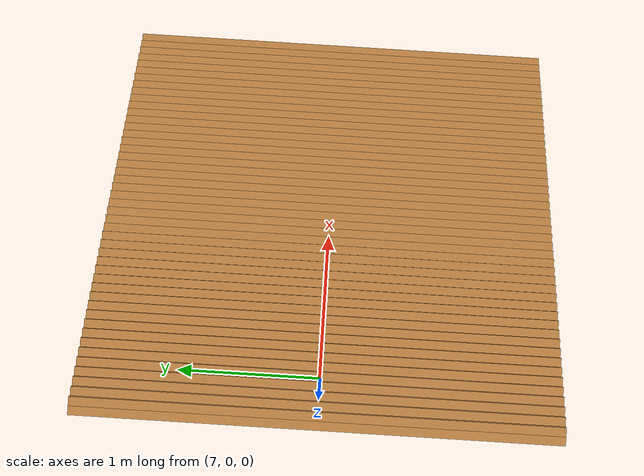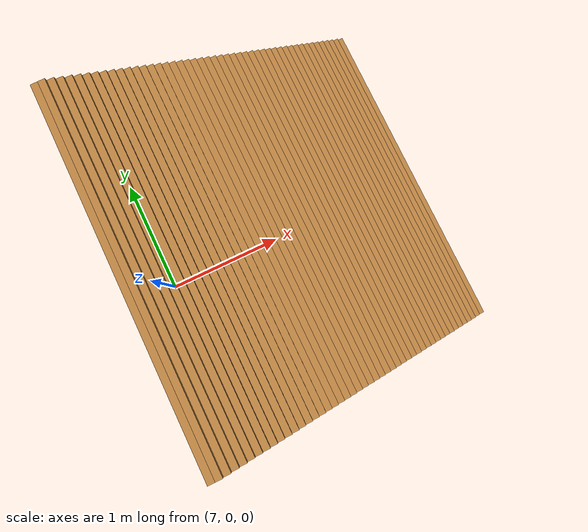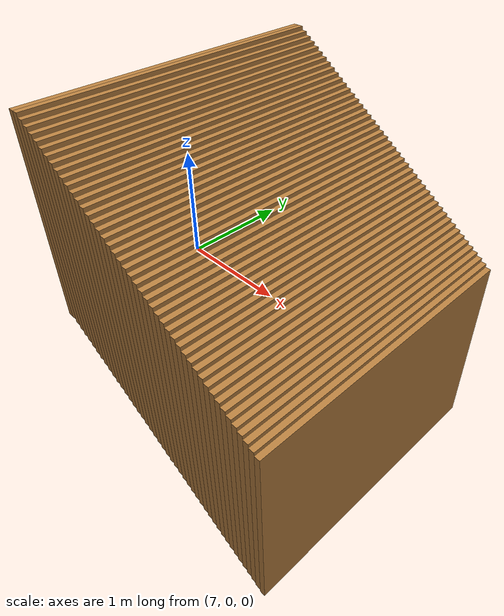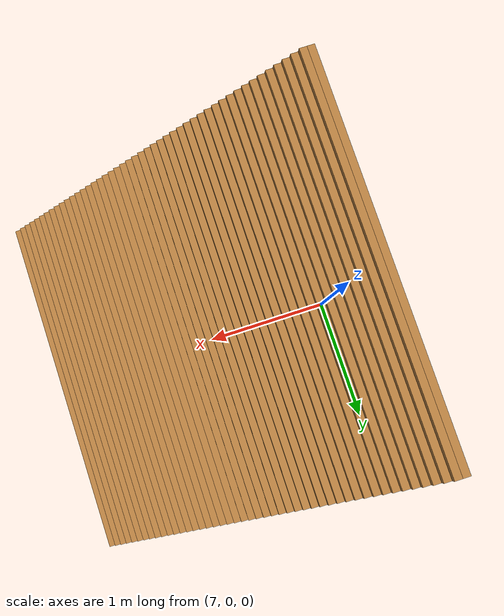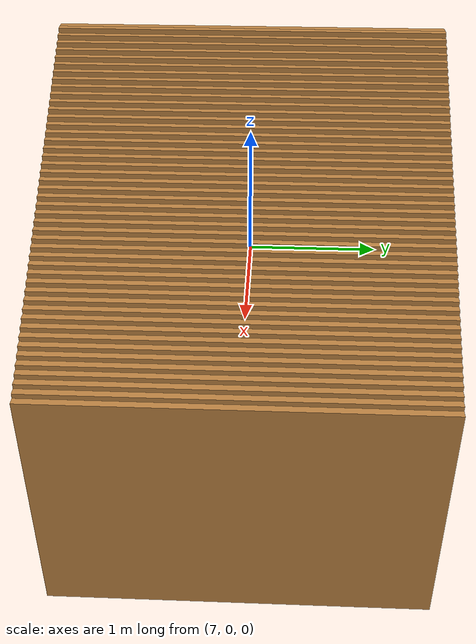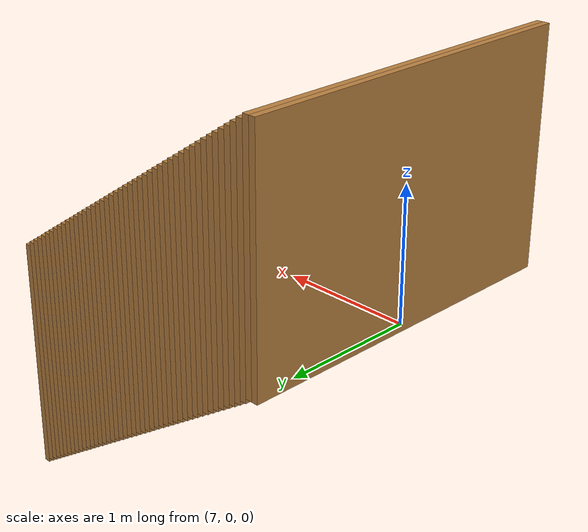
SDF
<sdf version="1.10">
 <world name="loader_soil_slice">
  <model name="soil_column_139">
   <static>true</static>
   <pose>6.975000 0 0.883137 0 0 0</pose>
   <link name="link">
    <visual name="visual">
     <geometry><box><size>0.050000 2.700000 1.800000</size></box></geometry>
     <material><ambient>0.58 0.38 0.18 1</ambient><diffuse>0.72 0.50 0.25 1</diffuse></material>
    </visual>
   </link>
  </model>
  <model name="soil_column_140">
   <static>true</static>
   <pose>7.025000 0 0.883137 0 0 0</pose>
   <link name="link">
    <visual name="visual">
     <geometry><box><size>0.050000 2.700000 1.800000</size></box></geometry>
     <material><ambient>0.58 0.38 0.18 1</ambient><diffuse>0.72 0.50 0.25 1</diffuse></material>
    </visual>
   </link>
  </model>
  <model name="soil_column_141">
   <static>true</static>
   <pose>7.075000 0 0.849412 0 0 0</pose>
   <link name="link">
    <visual name="visual">
     <geometry><box><size>0.050000 2.700000 1.800000</size></box></geometry>
     <material><ambient>0.58 0.38 0.18 1</ambient><diffuse>0.72 0.50 0.25 1</diffuse></material>
    </visual>
   </link>
  </model>
  <model name="soil_column_142">
   <static>true</static>
   <pose>7.125000 0 0.815686 0 0 0</pose>
   <link name="link">
    <visual name="visual">
     <geometry><box><size>0.050000 2.700000 1.800000</size></box></geometry>
     <material><ambient>0.58 0.38 0.18 1</ambient><diffuse>0.72 0.50 0.25 1</diffuse></material>
    </visual>
   </link>
  </model>
  <model name="soil_column_143">
   <static>true</static>
   <pose>7.175000 0 0.781961 0 0 0</pose>
   <link name="link">
    <visual name="visual">
     <geometry><box><size>0.050000 2.700000 1.800000</size></box></geometry>
     <material><ambient>0.58 0.38 0.18 1</ambient><diffuse>0.72 0.50 0.25 1</diffuse></material>
    </visual>
   </link>
  </model>
  <model name="soil_column_144">
   <static>true</static>
   <pose>7.225000 0 0.748236 0 0 0</pose>
   <link name="link">
    <visual name="visual">
     <geometry><box><size>0.050000 2.700000 1.800000</size></box></geometry>
     <material><ambient>0.58 0.38 0.18 1</ambient><diffuse>0.72 0.50 0.25 1</diffuse></material>
    </visual>
   </link>
  </model>
  <model name="soil_column_145">
   <static>true</static>
   <pose>7.275000 0 0.714510 0 0 0</pose>
   <link name="link">
    <visual name="visual">
     <geometry><box><size>0.050000 2.700000 1.800000</size></box></geometry>
     <material><ambient>0.58 0.38 0.18 1</ambient><diffuse>0.72 0.50 0.25 1</diffuse></material>
    </visual>
   </link>
  </model>
  <model name="soil_column_146">
   <static>true</static>
   <pose>7.325000 0 0.680785 0 0 0</pose>
   <link name="link">
    <visual name="visual">
     <geometry><box><size>0.050000 2.700000 1.800000</size></box></geometry>
     <material><ambient>0.58 0.38 0.18 1</ambient><diffuse>0.72 0.50 0.25 1</diffuse></material>
    </visual>
   </link>
  </model>
  <model name="soil_column_147">
   <static>true</static>
   <pose>7.375000 0 0.647059 0 0 0</pose>
   <link name="link">
    <visual name="visual">
     <geometry><box><size>0.050000 2.700000 1.800000</size></box></geometry>
     <material><ambient>0.58 0.38 0.18 1</ambient><diffuse>0.72 0.50 0.25 1</diffuse></material>
    </visual>
   </link>
  </model>
  <model name="soil_column_148">
   <static>true</static>
   <pose>7.425000 0 0.613334 0 0 0</pose>
   <link name="link">
    <visual name="visual">
     <geometry><box><size>0.050000 2.700000 1.800000</size></box></geometry>
     <material><ambient>0.58 0.38 0.18 1</ambient><diffuse>0.72 0.50 0.25 1</diffuse></material>
    </visual>
   </link>
  </model>
  <model name="soil_column_149">
   <static>true</static>
   <pose>7.475000 0 0.579608 0 0 0</pose>
   <link name="link">
    <visual name="visual">
     <geometry><box><size>0.050000 2.700000 1.800000</size></box></geometry>
     <material><ambient>0.58 0.38 0.18 1</ambient><diffuse>0.72 0.50 0.25 1</diffuse></material>
    </visual>
   </link>
  </model>
  <model name="soil_column_150">
   <static>true</static>
   <pose>7.525000 0 0.545883 0 0 0</pose>
   <link name="link">
    <visual name="visual">
     <geometry><box><size>0.050000 2.700000 1.800000</size></box></geometry>
     <material><ambient>0.58 0.38 0.18 1</ambient><diffuse>0.72 0.50 0.25 1</diffuse></material>
    </visual>
   </link>
  </model>
  <model name="soil_column_151">
   <static>true</static>
   <pose>7.575000 0 0.512158 0 0 0</pose>
   <link name="link">
    <visual name="visual">
     <geometry><box><size>0.050000 2.700000 1.800000</size></box></geometry>
     <material><ambient>0.58 0.38 0.18 1</ambient><diffuse>0.72 0.50 0.25 1</diffuse></material>
    </visual>
   </link>
  </model>
  <model name="soil_column_152">
   <static>true</static>
   <pose>7.625000 0 0.478432 0 0 0</pose>
   <link name="link">
    <visual name="visual">
     <geometry><box><size>0.050000 2.700000 1.800000</size></box></geometry>
     <material><ambient>0.58 0.38 0.18 1</ambient><diffuse>0.72 0.50 0.25 1</diffuse></material>
    </visual>
   </link>
  </model>
  <model name="soil_column_153">
   <static>true</static>
   <pose>7.675000 0 0.444707 0 0 0</pose>
   <link name="link">
    <visual name="visual">
     <geometry><box><size>0.050000 2.700000 1.800000</size></box></geometry>
     <material><ambient>0.58 0.38 0.18 1</ambient><diffuse>0.72 0.50 0.25 1</diffuse></material>
    </visual>
   </link>
  </model>
  <model name="soil_column_154">
   <static>true</static>
   <pose>7.725000 0 0.410981 0 0 0</pose>
   <link name="link">
    <visual name="visual">
     <geometry><box><size>0.050000 2.700000 1.800000</size></box></geometry>
     <material><ambient>0.58 0.38 0.18 1</ambient><diffuse>0.72 0.50 0.25 1</diffuse></material>
    </visual>
   </link>
  </model>
  <model name="soil_column_155">
   <static>true</static>
   <pose>7.775000 0 0.377256 0 0 0</pose>
   <link name="link">
    <visual name="visual">
     <geometry><box><size>0.050000 2.700000 1.800000</size></box></geometry>
     <material><ambient>0.58 0.38 0.18 1</ambient><diffuse>0.72 0.50 0.25 1</diffuse></material>
    </visual>
   </link>
  </model>
  <model name="soil_column_156">
   <static>true</static>
   <pose>7.825000 0 0.343530 0 0 0</pose>
   <link name="link">
    <visual name="visual">
     <geometry><box><size>0.050000 2.700000 1.800000</size></box></geometry>
     <material><ambient>0.58 0.38 0.18 1</ambient><diffuse>0.72 0.50 0.25 1</diffuse></material>
    </visual>
   </link>
  </model>
  <model name="soil_column_157">
   <static>true</static>
   <pose>7.875000 0 0.309805 0 0 0</pose>
   <link name="link">
    <visual name="visual">
     <geometry><box><size>0.050000 2.700000 1.800000</size></box></geometry>
     <material><ambient>0.58 0.38 0.18 1</ambient><diffuse>0.72 0.50 0.25 1</diffuse></material>
    </visual>
   </link>
  </model>
  <model name="soil_column_158">
   <static>true</static>
   <pose>7.925000 0 0.276080 0 0 0</pose>
   <link name="link">
    <visual name="visual">
     <geometry><box><size>0.050000 2.700000 1.800000</size></box></geometry>
     <material><ambient>0.58 0.38 0.18 1</ambient><diffuse>0.72 0.50 0.25 1</diffuse></material>
    </visual>
   </link>
  </model>
  <model name="soil_column_159">
   <static>true</static>
   <pose>7.975000 0 0.242354 0 0 0</pose>
   <link name="link">
    <visual name="visual">
     <geometry><box><size>0.050000 2.700000 1.800000</size></box></geometry>
     <material><ambient>0.58 0.38 0.18 1</ambient><diffuse>0.72 0.50 0.25 1</diffuse></material>
    </visual>
   </link>
  </model>
  <model name="soil_column_160">
   <static>true</static>
   <pose>8.025000 0 0.208629 0 0 0</pose>
   <link name="link">
    <visual name="visual">
     <geometry><box><size>0.050000 2.700000 1.800000</size></box></geometry>
     <material><ambient>0.58 0.38 0.18 1</ambient><diffuse>0.72 0.50 0.25 1</diffuse></material>
    </visual>
   </link>
  </model>
  <model name="soil_column_161">
   <static>true</static>
   <pose>8.075000 0 0.174903 0 0 0</pose>
   <link name="link">
    <visual name="visual">
     <geometry><box><size>0.050000 2.700000 1.800000</size></box></geometry>
     <material><ambient>0.58 0.38 0.18 1</ambient><diffuse>0.72 0.50 0.25 1</diffuse></material>
    </visual>
   </link>
  </model>
  <model name="soil_column_162">
   <static>true</static>
   <pose>8.125000 0 0.141178 0 0 0</pose>
   <link name="link">
    <visual name="visual">
     <geometry><box><size>0.050000 2.700000 1.800000</size></box></geometry>
     <material><ambient>0.58 0.38 0.18 1</ambient><diffuse>0.72 0.50 0.25 1</diffuse></material>
    </visual>
   </link>
  </model>
  <model name="soil_column_163">
   <static>true</static>
   <pose>8.175000 0 0.107452 0 0 0</pose>
   <link name="link">
    <visual name="visual">
     <geometry><box><size>0.050000 2.700000 1.800000</size></box></geometry>
     <material><ambient>0.58 0.38 0.18 1</ambient><diffuse>0.72 0.50 0.25 1</diffuse></material>
    </visual>
   </link>
  </model>
  <model name="soil_column_164">
   <static>true</static>
   <pose>8.225000 0 0.073727 0 0 0</pose>
   <link name="link">
    <visual name="visual">
     <geometry><box><size>0.050000 2.700000 1.800000</size></box></geometry>
     <material><ambient>0.58 0.38 0.18 1</ambient><diffuse>0.72 0.50 0.25 1</diffuse></material>
    </visual>
   </link>
  </model>
  <model name="soil_column_165">
   <static>true</static>
   <pose>8.275000 0 0.040002 0 0 0</pose>
   <link name="link">
    <visual name="visual">
     <geometry><box><size>0.050000 2.700000 1.800000</size></box></geometry>
     <material><ambient>0.58 0.38 0.18 1</ambient><diffuse>0.72 0.50 0.25 1</diffuse></material>
    </visual>
   </link>
  </model>
  <model name="soil_column_166">
   <static>true</static>
   <pose>8.325000 0 0.006276 0 0 0</pose>
   <link name="link">
    <visual name="visual">
     <geometry><box><size>0.050000 2.700000 1.800000</size></box></geometry>
     <material><ambient>0.58 0.38 0.18 1</ambient><diffuse>0.72 0.50 0.25 1</diffuse></material>
    </visual>
   </link>
  </model>
  <model name="soil_column_167">
   <static>true</static>
   <pose>8.375000 0 -0.027449 0 0 0</pose>
   <link name="link">
    <visual name="visual">
     <geometry><box><size>0.050000 2.700000 1.800000</size></box></geometry>
     <material><ambient>0.58 0.38 0.18 1</ambient><diffuse>0.72 0.50 0.25 1</diffuse></material>
    </visual>
   </link>
  </model>
  <model name="soil_column_168">
   <static>true</static>
   <pose>8.425000 0 -0.061175 0 0 0</pose>
   <link name="link">
    <visual name="visual">
     <geometry><box><size>0.050000 2.700000 1.800000</size></box></geometry>
     <material><ambient>0.58 0.38 0.18 1</ambient><diffuse>0.72 0.50 0.25 1</diffuse></material>
    </visual>
   </link>
  </model>
  <model name="soil_column_169">
   <static>true</static>
   <pose>8.475000 0 -0.094900 0 0 0</pose>
   <link name="link">
    <visual name="visual">
     <geometry><box><size>0.050000 2.700000 1.800000</size></box></geometry>
     <material><ambient>0.58 0.38 0.18 1</ambient><diffuse>0.72 0.50 0.25 1</diffuse></material>
    </visual>
   </link>
  </model>
  <model name="soil_column_170">
   <static>true</static>
   <pose>8.525000 0 -0.128625 0 0 0</pose>
   <link name="link">
    <visual name="visual">
     <geometry><box><size>0.050000 2.700000 1.800000</size></box></geometry>
     <material><ambient>0.58 0.38 0.18 1</ambient><diffuse>0.72 0.50 0.25 1</diffuse></material>
    </visual>
   </link>
  </model>
  <model name="soil_column_171">
   <static>true</static>
   <pose>8.575000 0 -0.162351 0 0 0</pose>
   <link name="link">
    <visual name="visual">
     <geometry><box><size>0.050000 2.700000 1.800000</size></box></geometry>
     <material><ambient>0.58 0.38 0.18 1</ambient><diffuse>0.72 0.50 0.25 1</diffuse></material>
    </visual>
   </link>
  </model>
  <model name="soil_column_172">
   <static>true</static>
   <pose>8.625000 0 -0.196076 0 0 0</pose>
   <link name="link">
    <visual name="visual">
     <geometry><box><size>0.050000 2.700000 1.800000</size></box></geometry>
     <material><ambient>0.58 0.38 0.18 1</ambient><diffuse>0.72 0.50 0.25 1</diffuse></material>
    </visual>
   </link>
  </model>
  <model name="soil_column_173">
   <static>true</static>
   <pose>8.675000 0 -0.229802 0 0 0</pose>
   <link name="link">
    <visual name="visual">
     <geometry><box><size>0.050000 2.700000 1.800000</size></box></geometry>
     <material><ambient>0.58 0.38 0.18 1</ambient><diffuse>0.72 0.50 0.25 1</diffuse></material>
    </visual>
   </link>
  </model>
  <model name="soil_column_174">
   <static>true</static>
   <pose>8.725000 0 -0.263527 0 0 0</pose>
   <link name="link">
    <visual name="visual">
     <geometry><box><size>0.050000 2.700000 1.800000</size></box></geometry>
     <material><ambient>0.58 0.38 0.18 1</ambient><diffuse>0.72 0.50 0.25 1</diffuse></material>
    </visual>
   </link>
  </model>
  <model name="soil_column_175">
   <static>true</static>
   <pose>8.775000 0 -0.297253 0 0 0</pose>
   <link name="link">
    <visual name="visual">
     <geometry><box><size>0.050000 2.700000 1.800000</size></box></geometry>
     <material><ambient>0.58 0.38 0.18 1</ambient><diffuse>0.72 0.50 0.25 1</diffuse></material>
    </visual>
   </link>
  </model>
  <model name="soil_column_176">
   <static>true</static>
   <pose>8.825000 0 -0.330978 0 0 0</pose>
   <link name="link">
    <visual name="visual">
     <geometry><box><size>0.050000 2.700000 1.800000</size></box></geometry>
     <material><ambient>0.58 0.38 0.18 1</ambient><diffuse>0.72 0.50 0.25 1</diffuse></material>
    </visual>
   </link>
  </model>
  <model name="soil_column_177">
   <static>true</static>
   <pose>8.875000 0 -0.364703 0 0 0</pose>
   <link name="link">
    <visual name="visual">
     <geometry><box><size>0.050000 2.700000 1.800000</size></box></geometry>
     <material><ambient>0.58 0.38 0.18 1</ambient><diffuse>0.72 0.50 0.25 1</diffuse></material>
    </visual>
   </link>
  </model>
  <model name="soil_column_178">
   <static>true</static>
   <pose>8.925000 0 -0.398429 0 0 0</pose>
   <link name="link">
    <visual name="visual">
     <geometry><box><size>0.050000 2.700000 1.800000</size></box></geometry>
     <material><ambient>0.58 0.38 0.18 1</ambient><diffuse>0.72 0.50 0.25 1</diffuse></material>
    </visual>
   </link>
  </model>
  <model name="soil_column_179">
   <static>true</static>
   <pose>8.975000 0 -0.432154 0 0 0</pose>
   <link name="link">
    <visual name="visual">
     <geometry><box><size>0.050000 2.700000 1.800000</size></box></geometry>
     <material><ambient>0.58 0.38 0.18 1</ambient><diffuse>0.72 0.50 0.25 1</diffuse></material>
    </visual>
   </link>
  </model>
  <model name="soil_column_180">
   <static>true</static>
   <pose>9.025000 0 -0.465880 0 0 0</pose>
   <link name="link">
    <visual name="visual">
     <geometry><box><size>0.050000 2.700000 1.800000</size></box></geometry>
     <material><ambient>0.58 0.38 0.18 1</ambient><diffuse>0.72 0.50 0.25 1</diffuse></material>
    </visual>
   </link>
  </model>
  <model name="soil_column_181">
   <static>true</static>
   <pose>9.075000 0 -0.499605 0 0 0</pose>
   <link name="link">
    <visual name="visual">
     <geometry><box><size>0.050000 2.700000 1.800000</size></box></geometry>
     <material><ambient>0.58 0.38 0.18 1</ambient><diffuse>0.72 0.50 0.25 1</diffuse></material>
    </visual>
   </link>
  </model>
  <model name="soil_column_182">
   <static>true</static>
   <pose>9.125000 0 -0.533331 0 0 0</pose>
   <link name="link">
    <visual name="visual">
     <geometry><box><size>0.050000 2.700000 1.800000</size></box></geometry>
     <material><ambient>0.58 0.38 0.18 1</ambient><diffuse>0.72 0.50 0.25 1</diffuse></material>
    </visual>
   </link>
  </model>
  <model name="soil_column_183">
   <static>true</static>
   <pose>9.175000 0 -0.567056 0 0 0</pose>
   <link name="link">
    <visual name="visual">
     <geometry><box><size>0.050000 2.700000 1.800000</size></box></geometry>
     <material><ambient>0.58 0.38 0.18 1</ambient><diffuse>0.72 0.50 0.25 1</diffuse></material>
    </visual>
   </link>
  </model>
  <model name="soil_column_184">
   <static>true</static>
   <pose>9.225000 0 -0.600781 0 0 0</pose>
   <link name="link">
    <visual name="visual">
     <geometry><box><size>0.050000 2.700000 1.800000</size></box></geometry>
     <material><ambient>0.58 0.38 0.18 1</ambient><diffuse>0.72 0.50 0.25 1</diffuse></material>
    </visual>
   </link>
  </model>
  <model name="soil_column_185">
   <static>true</static>
   <pose>9.275000 0 -0.634507 0 0 0</pose>
   <link name="link">
    <visual name="visual">
     <geometry><box><size>0.050000 2.700000 1.800000</size></box></geometry>
     <material><ambient>0.58 0.38 0.18 1</ambient><diffuse>0.72 0.50 0.25 1</diffuse></material>
    </visual>
   </link>
  </model>
 </world>
</sdf>
